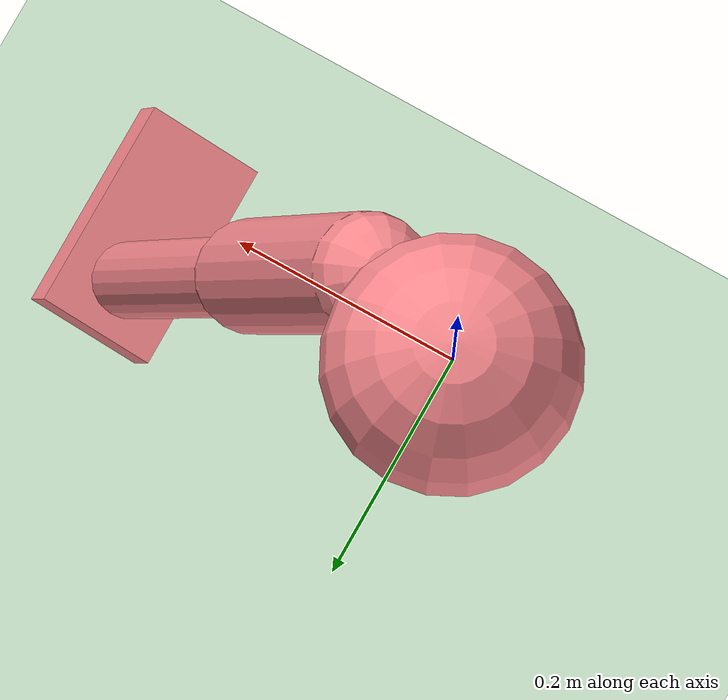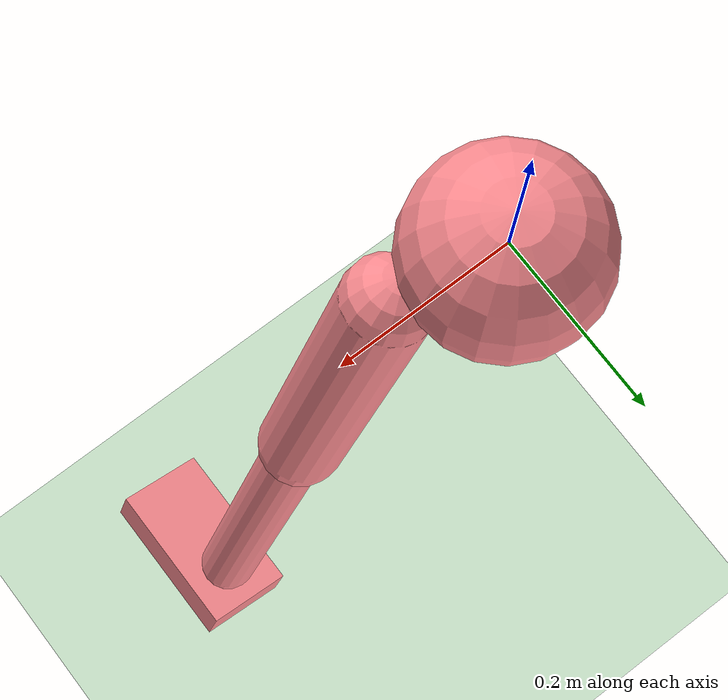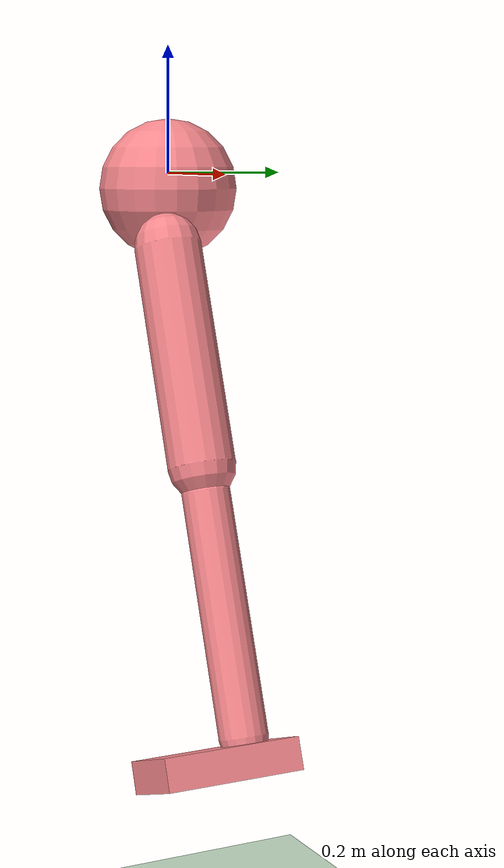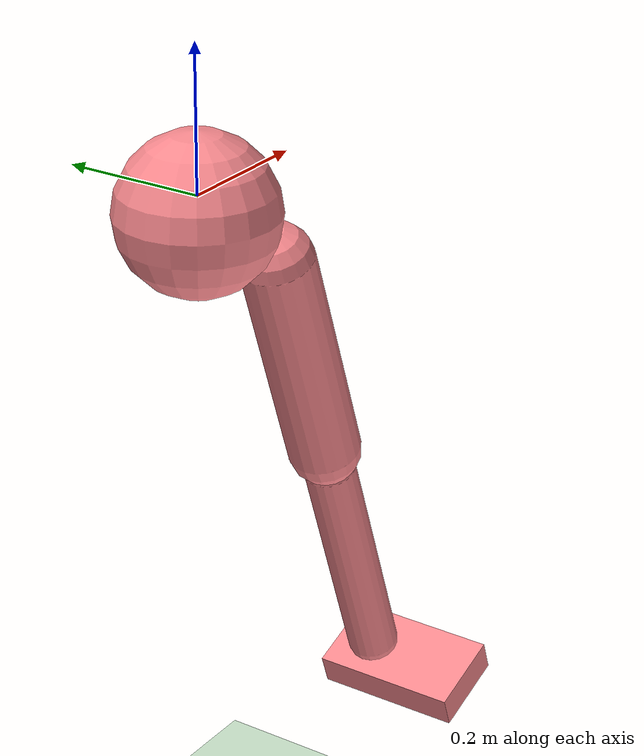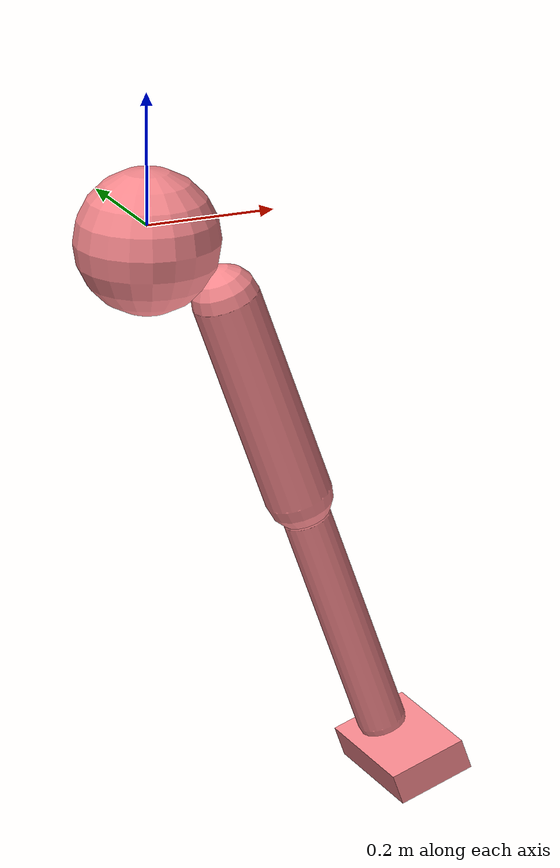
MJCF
<mujoco model="humanoid">
  <compiler angle="degree" inertiafromgeom="true" coordinate="global"/>
  <include file="./common/materials.xml"/>
    <visual>
    <headlight ambient=".4 .4 .4" diffuse=".8 .8 .8" specular="0.3 0.3 0.3"/>
    <map znear=".01"/>
    <quality shadowsize="2048"/>
  </visual>
  <default>
    <joint damping="0.0" armature="0.01" stiffness="0.0" limited="true"/>
    <geom conaffinity="7" condim="1" contype="7" margin="0.001" material="self" rgba=".98 .54 .56 1."/>
  </default>
  <statistic extent="3" center="0 0 1"/>
  <option timestep="0.00222222222"/>
  <asset>
    <texture type="skybox" file="./common/sky1.png" gridsize="3 4" gridlayout=".U..LFRB.D.." width="8192" height="8192"/>
    <texture builtin="flat" height="1278" mark="cross" markrgb="1 1 1" name="texgeom" random="0.01" rgb1=".8 .6 .4" rgb2=".8 .6 .4" type="cube" width="127"/>
  </asset>
  <worldbody>
    <light cutoff="100" diffuse="1 1 1" dir="-0 0 -1.3" directional="true" exponent="1" pos="0 0 1.3" specular=".1 .1 .1"/>
    <geom condim="3" friction="1. .1 .1" material="grid_new" name="floor" pos="0 0 -1.3" rgba=".8 .9 .8 1" size="100 100 .2" type="plane"/>
    <body name="root" user="0.0000 -0.0000 0.0000" pos="0.0000 -0.0000 0.0000">
      <joint armature="0.0" limited="false" name="root" pos="0.0000 -0.0000 0.0000"  type="hinge"/>
      <geom pos="0.0000 0.0000 -0.0240" size="0.1100" type="sphere"/>
      <body name="lhipjoint" user="0.0963 -0.0494 -0.0918" pos="0.0000 -0.0000 0.0000">
        <body name="lfemur" user="0.2274 -0.0494 -0.4521" pos="0.0963 -0.0494 -0.0918">
          <joint axis="0.0000 -1.0000 0.0000" name="lfemur_z" pos="0.0963 -0.0494 -0.0918" range="-60.0000 70.0000" type="hinge"/>
          <joint axis="-0.3420 -0.0000 0.9397" name="lfemur_y" pos="0.0963 -0.0494 -0.0918" range="-70.0000 70.0000" type="hinge"/>
          <joint axis="0.9397 0.0000 0.3420" name="lfemur_x" pos="0.0963 -0.0494 -0.0918" range="-160.0000 20.0000" type="hinge"/>
          <geom fromto="0.1031 -0.0494 -0.1106 0.2206 -0.0494 -0.4333" size="0.0520" type="capsule"/>
          <body name="ltibia" user="0.3657 -0.0494 -0.8321" pos="0.2274 -0.0494 -0.4521">
            <joint axis="0.9397 0.0000 0.3420" name="ltibia_x" stiffness="1e3" pos="0.2274 -0.0494 -0.4521" range="0.0000 170.0000" type="hinge"/>
            <geom contype="1" conaffinity="1" fromto="0.2343 -0.0494 -0.4709 0.3589 -0.0494 -0.8133" size="0.0370" type="capsule"/>
            <body name="lfoot" user="0.3731 -0.1606 -0.8523" pos="0.3657 -0.0494 -0.8321">
              <geom contype="1" conaffinity="1" pos="0.3714 -0.0990 -0.8442" size="0.0600 0.1070 0.0240" quat="0.9848 -0.0000 -0.1736 0.0000" type="box"/>
              <joint axis="-0.3420 -0.0000 0.9397" name="lfoot_z" stiffness= "1e3" pos="0.3657 -0.0494 -0.8321" range="-70.0000 20.0000" type="hinge"/>
              <joint axis="0.0000 -1.0000 0.0000" name="lfoot_y" stiffness= "1e3" pos="0.3657 -0.0494 -0.8321" range="-45.0000 45.0000" type="hinge"/>
              <joint axis="0.9397 0.0000 0.3420" name="lfoot_x" pos="0.3657 -0.0494 -0.8321" range="-45.0000 90.0000" type="hinge"/>
            </body>
          </body>
        </body>
      </body>
    </body>
  </worldbody>
  <actuator>
    <motor gear="100" joint="lfemur_z" name="lfemur_z"/>
    <motor gear="100" joint="lfemur_y" name="lfemur_y"/>
    <motor gear="100" joint="lfemur_x" name="lfemur_x"/>
    <motor gear="100" joint="ltibia_x" name="ltibia_x"/>
    <motor gear="100" joint="lfoot_z" name="lfoot_z"/>
    <motor gear="100" joint="lfoot_y" name="lfoot_y"/>
    <motor gear="100" joint="lfoot_x" name="lfoot_x"/>
  </actuator>
</mujoco>

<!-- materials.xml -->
<!--
Common textures, colors and materials to be used throughout this suite. Some
materials such as xxx_highlight are activated on occurence of certain events,
for example receiving a positive reward.
-->
<mujoco>
  <asset>
    <texture name="grid" type="2d" builtin="checker" rgb1=".1 .2 .3" rgb2=".2 .3 .4" width="300" height="300" mark="edge" markrgb=".2 .3 .4"/>
    <material name="grid" texture="grid" texrepeat="1 1" texuniform="true" reflectance=".2"/>
    <texture builtin="checker" height="100" name="texplane" rgb1="0 0 0" rgb2=".8 .8 .8" type="2d" width="100"/>
    <texture name="grass" file="./common/grass.png" type="2d"/>

    <texture name="grid_new" type="2d" builtin="checker" rgb1=".1 .3 .2" rgb2=".2 .4 .3" width="1000" height="1000" mark="none" markrgb=".8 .6 .4"/>
    <material name="grid_new" texture="grid_new" texrepeat="0.2 0.2" texuniform="true" reflectance=".2"/>
    <material name="MatPlane" reflectance="0.5" shininess="1" specular="1" texrepeat="60 60" texture="texplane"/>
    <material name="GrassPlane" reflectance="0.0" shininess="1" specular="1" texrepeat="400 400" texture="grass"/>
    <material name="self" rgba=".7 .5 .3 1"/>
    <material name="self_default" rgba=".7 .5 .3 1"/>
    <material name="self_highlight" rgba="0 .5 .3 1"/>
    <material name="effector" rgba=".7 .4 .2 1"/>
    <material name="effector_default" rgba=".7 .4 .2 1"/>
    <material name="effector_highlight" rgba="0 .5 .3 1"/>
    <material name="decoration" rgba=".3 .5 .7 1"/>
    <material name="eye" rgba="0 .2 1 1"/>
    <material name="target" rgba=".6 .3 .3 1"/>
    <material name="target_default" rgba=".6 .3 .3 1"/>
    <material name="target_highlight" rgba=".6 .3 .3 .4"/>
    <material name="expert" rgba=".6 .3 .3 .4"/>
  </asset>
</mujoco>
